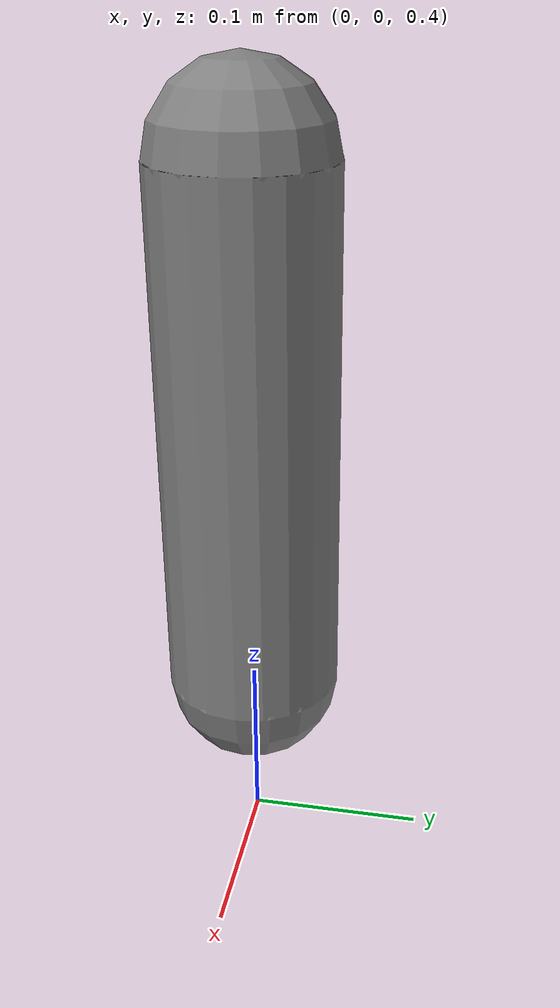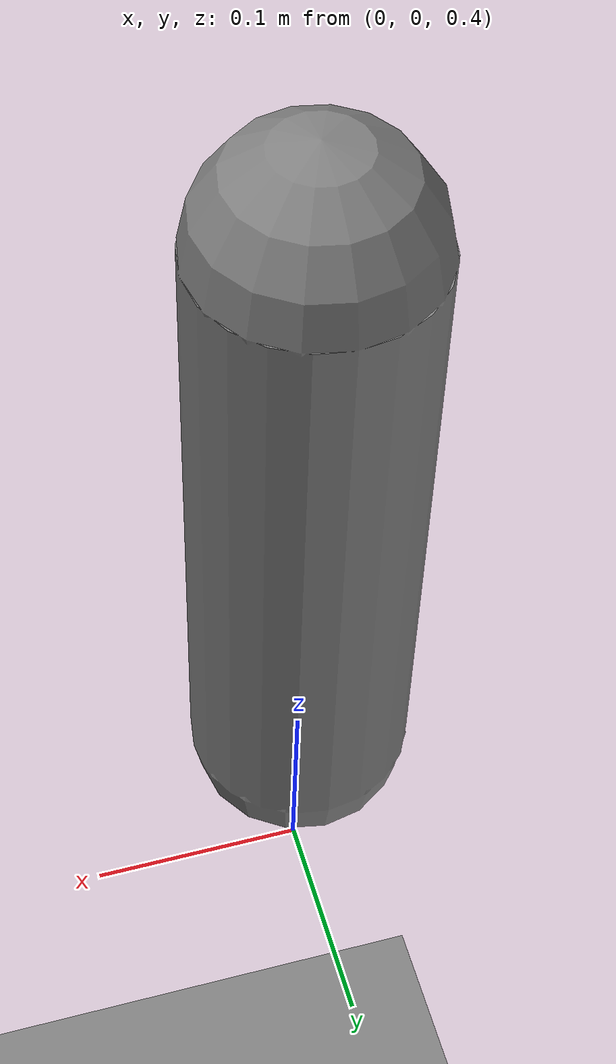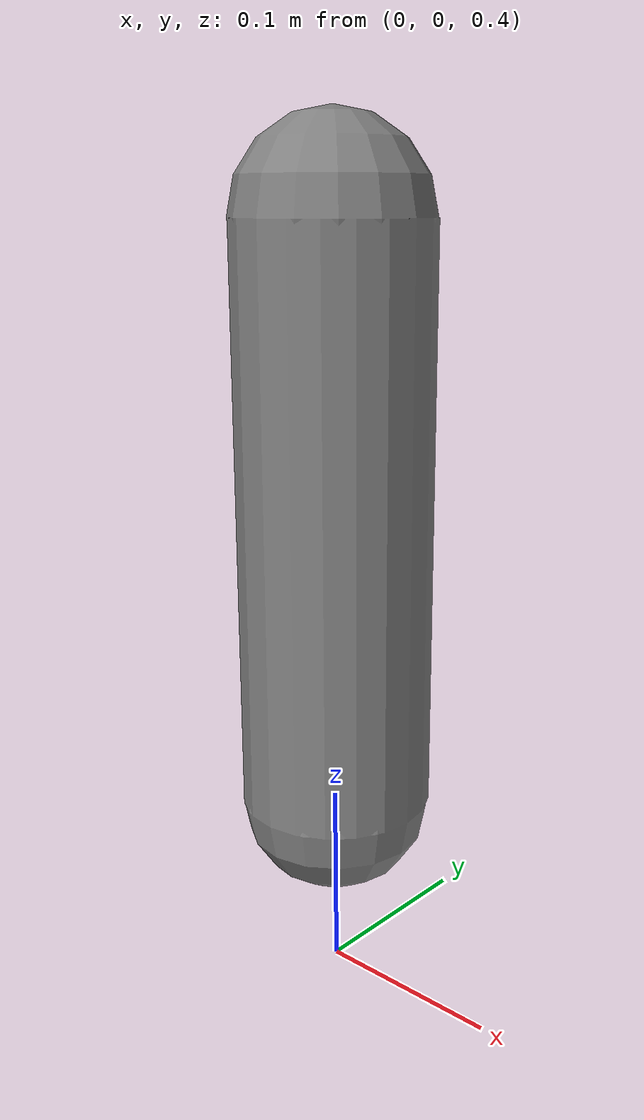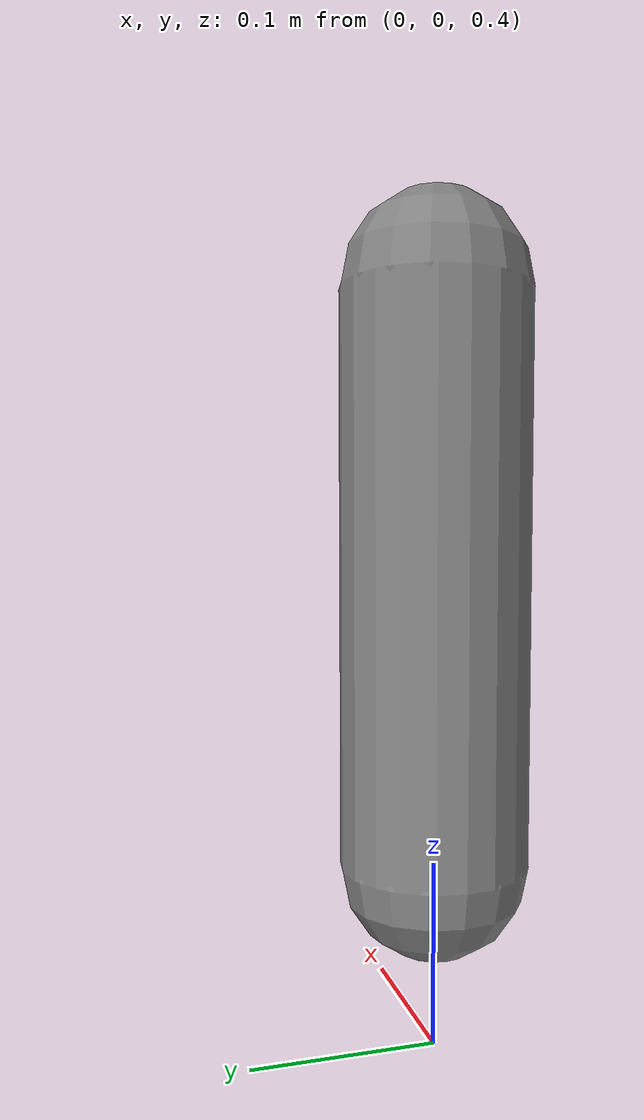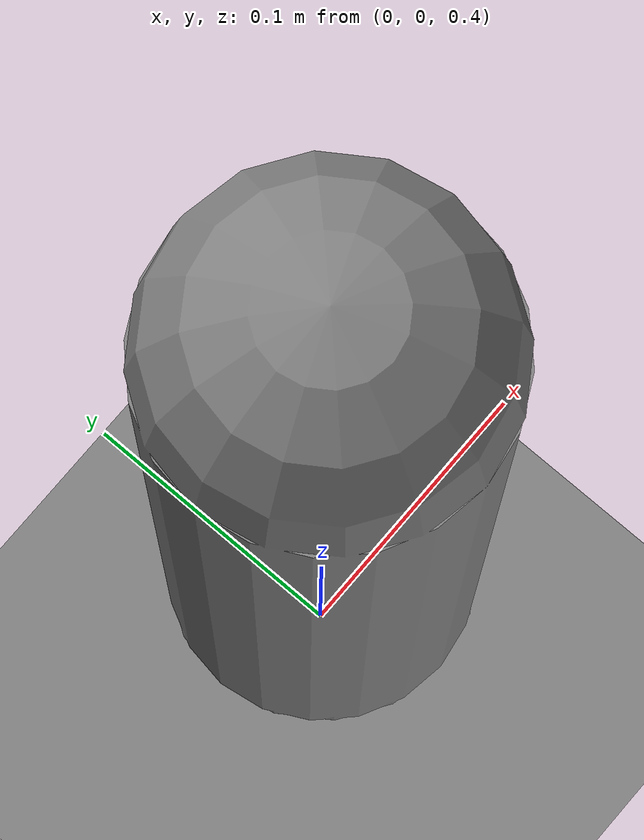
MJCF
<mujoco model="unnamed_root_joint_stack">
  <worldbody>
    <geom name="floor" type="plane" size="2 2 0.1"/>
    <body pos="0 0 0.5">
      <joint type="hinge" axis="1 0 0" pos="0 0 0"/>
      <joint type="hinge" axis="0 1 0" pos="0 0 0"/>
      <geom name="rotor" type="capsule" fromto="0 0 0 0 0 0.3" size="0.05"/>
    </body>
  </worldbody>
</mujoco>
